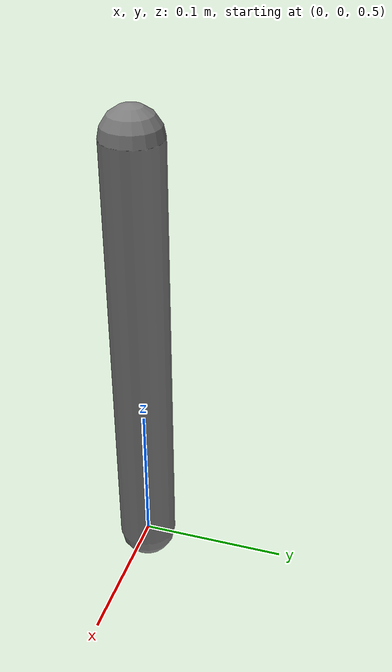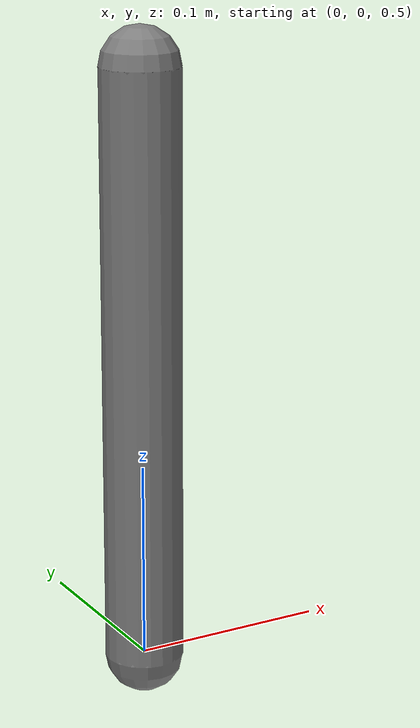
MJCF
<mujoco model="render_threading">
  <worldbody>
    <body pos="0 0 0.5">
      <joint name="test_joint" type="hinge" axis="0 1 0"/>
      <geom type="capsule" fromto="0 0 0 0 0 0.3" size="0.02" mass="1"/>
    </body>
  </worldbody>
  <actuator>
    <motor joint="test_joint"/>
  </actuator>
</mujoco>
